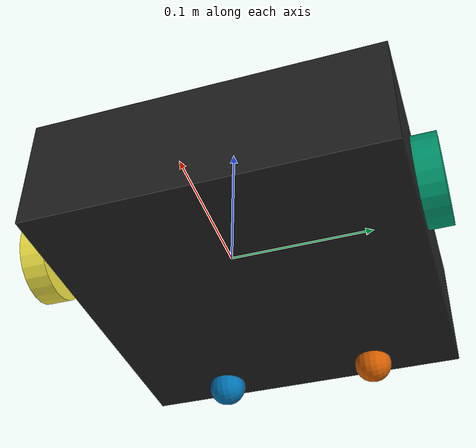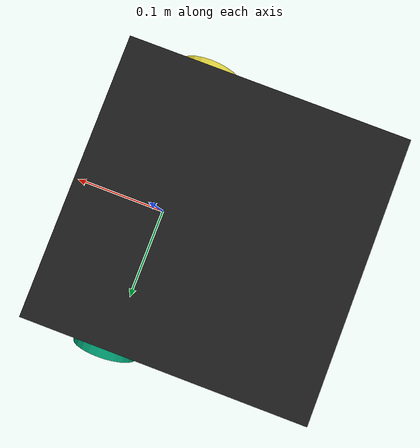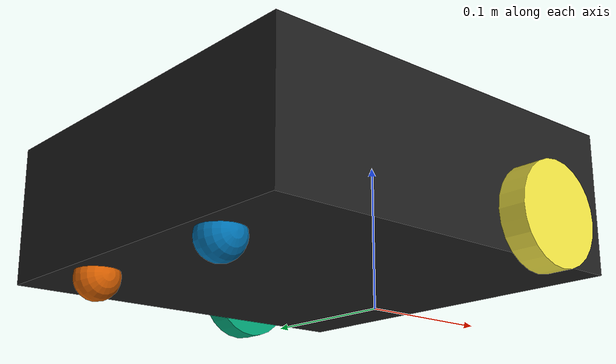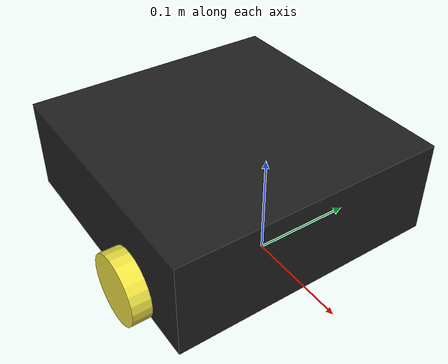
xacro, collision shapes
<?xml version="1.0" ?>
<robot xmlns:xacro="http://ros.org/wiki/xacro">

  <xacro:arg name="namespace" default=""/>
  <xacro:property name="namespace" value="$(arg namespace)"/>

  <gazebo reference="${namespace}base_link">
    <material>Gazebo/DarkGrey</material>
  </gazebo>

  <link name="${namespace}base_footprint"/>

  <joint name="${namespace}base_joint" type="fixed">
    <parent link="${namespace}base_footprint"/>
    <child link="${namespace}base_link" />
    <origin xyz="0 0 0.010" rpy="0 0 0"/>
  </joint>

  <link name="${namespace}base_link">
    <visual>
      <origin xyz="-0.064 0 0.0" rpy="0 0 0"/>
      <geometry>
        <mesh filename="package://turtlebot3_description/meshes/bases/waffle_base.stl" scale="0.001 0.001 0.001"/>
      </geometry>
      <material name="light_black"/>
    </visual>
    <collision>
      <origin xyz="-0.064 0 0.047" rpy="0 0 0"/>
      <geometry>
        <box size="0.266 0.266 0.094"/>
      </geometry>
    </collision>
    <inertial>
      <origin xyz="0 0 0" rpy="0 0 0"/>
      <mass value="1.3729096e+00"/>
      <inertia ixx="8.7002718e-03" ixy="-4.7576583e-05" ixz="1.1160499e-04"
               iyy="8.6195418e-03" iyz="-3.5422299e-06"
               izz="1.4612727e-02" />
    </inertial>
  </link>

  <joint name="${namespace}wheel_left_joint" type="continuous">
    <parent link="${namespace}base_link"/>
    <child link="${namespace}wheel_left_link"/>
    <origin xyz="0.0 0.144 0.023" rpy="-1.57 0 0"/>
    <axis xyz="0 0 1"/>
    <dynamics damping="0.0" friction="0.0"/>
  </joint>

  <link name="${namespace}wheel_left_link">
    <visual>
      <origin xyz="0 0 0" rpy="1.57 0 0"/>
      <geometry>
        <mesh filename="package://turtlebot3_description/meshes/wheels/left_tire.stl" scale="0.001 0.001 0.001"/>
      </geometry>
      <material name="dark"/>
    </visual>
    <collision>
      <origin xyz="0 0 0" rpy="0 0 0"/>
      <geometry>
        <cylinder length="0.018" radius="0.033"/>
      </geometry>
    </collision>
    <inertial>
      <origin xyz="0 0 0" />
      <mass value="2.8498940e-02" />
      <inertia ixx="1.1175580e-05" ixy="-4.2369783e-11" ixz="-5.9381719e-09"
               iyy="1.1192413e-05" iyz="-1.4400107e-11"
               izz="2.0712558e-05" />
      </inertial>
  </link>

  <joint name="${namespace}wheel_right_joint" type="continuous">
    <parent link="${namespace}base_link"/>
    <child link="${namespace}wheel_right_link"/>
    <origin xyz="0.0 -0.144 0.023" rpy="-1.57 0 0"/>
    <axis xyz="0 0 1"/>
    <dynamics damping="0.0" friction="0.0"/>
  </joint>

  <link name="${namespace}wheel_right_link">
    <visual>
      <origin xyz="0 0 0" rpy="1.57 0 0"/>
      <geometry>
        <mesh filename="package://turtlebot3_description/meshes/wheels/right_tire.stl" scale="0.001 0.001 0.001"/>
      </geometry>
      <material name="dark"/>
    </visual>
    <collision>
      <origin xyz="0 0 0" rpy="0 0 0"/>
      <geometry>
        <cylinder length="0.018" radius="0.033"/>
      </geometry>
    </collision>
    <inertial>
      <origin xyz="0 0 0" />
      <mass value="2.8498940e-02" />
      <inertia ixx="1.1175580e-05" ixy="-4.2369783e-11" ixz="-5.9381719e-09"
               iyy="1.1192413e-05" iyz="-1.4400107e-11"
               izz="2.0712558e-05" />
      </inertial>
  </link>

  <joint name="${namespace}caster_back_right_joint" type="fixed">
    <parent link="${namespace}base_link"/>
    <child link="${namespace}caster_back_right_link"/>
    <origin xyz="-0.177 -0.064 -0.004" rpy="-1.57 0 0"/>
  </joint>

  <link name="${namespace}caster_back_right_link">
    <collision>
      <origin xyz="0 0 0" rpy="0 0 0"/>
      <geometry>
        <sphere radius="0.015"/>
      </geometry>
    </collision>
    <inertial>
      <origin xyz="0 0 0" />
      <mass value="0.005" />
      <inertia ixx="0.001" ixy="0.0" ixz="0.0" iyy="0.001" iyz="0.0" izz="0.001" />
    </inertial>
  </link>

  <joint name="${namespace}caster_back_left_joint" type="fixed">
    <parent link="${namespace}base_link"/>
    <child link="${namespace}caster_back_left_link"/>
    <origin xyz="-0.177 0.064 -0.004" rpy="-1.57 0 0"/>
  </joint>

  <link name="${namespace}caster_back_left_link">
    <collision>
       <origin xyz="0 0 0" rpy="0 0 0"/>
      <geometry>
        <sphere radius="0.015"/>
      </geometry>
    </collision>
    <inertial>
      <origin xyz="0 0 0" />
      <mass value="0.005" />
      <inertia ixx="0.001" ixy="0.0" ixz="0.0" iyy="0.001" iyz="0.0" izz="0.001" />
    </inertial>
  </link>

  <gazebo reference="${namespace}wheel_left_link">
    <mu1>100.0</mu1>
    <mu2>100.0</mu2>
    <kp>1000000.0</kp>
    <kd>1.0</kd>
    <minDepth>0.001</minDepth>
    <maxVel>0.1</maxVel>
    <fdir1>1 0 0</fdir1>
  </gazebo>

  <gazebo reference="${namespace}wheel_right_link">
    <mu1>100.0</mu1>
    <mu2>100.0</mu2>
    <kp>1000000.0</kp>
    <kd>1.0</kd>
    <minDepth>0.001</minDepth>
    <maxVel>0.1</maxVel>
    <fdir1>1 0 0</fdir1>
  </gazebo>

  <gazebo reference="${namespace}caster_back_right_link">
    <mu1>0.0</mu1>
    <mu2>0.0</mu2>
    <kp>1000000.0</kp>
    <kd>100.0</kd>
    <minDepth>0.001</minDepth>
    <maxVel>1.0</maxVel>
  </gazebo>

  <gazebo reference="${namespace}caster_back_left_link">
    <mu1>0.0</mu1>
    <mu2>0.0</mu2>
    <kp>1000000.0</kp>
    <kd>100.0</kd>
    <minDepth>0.001</minDepth>
    <maxVel>1.0</maxVel>
  </gazebo>

</robot>
